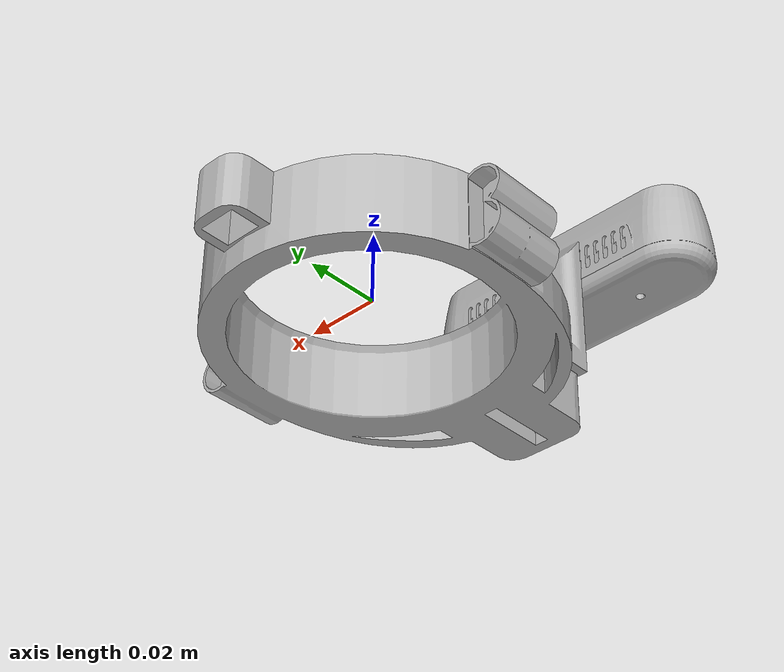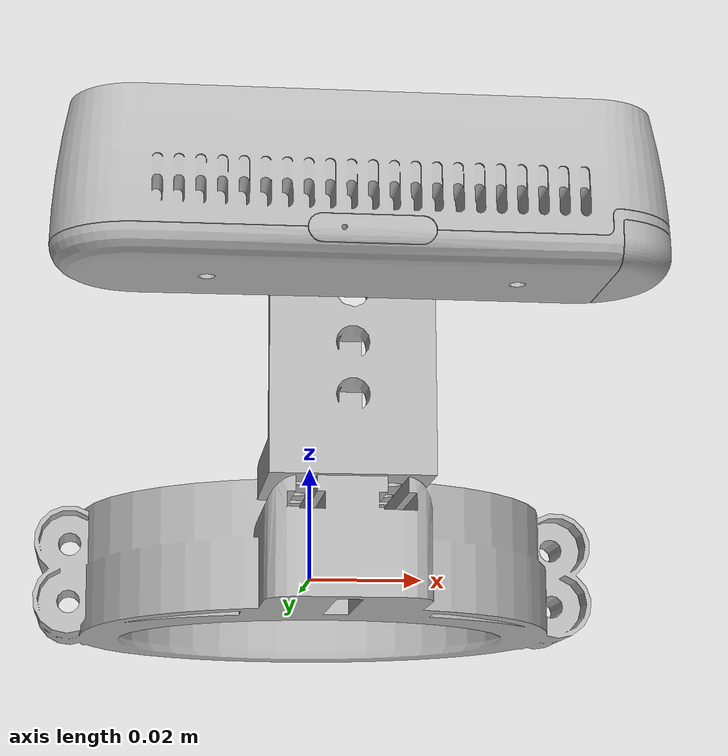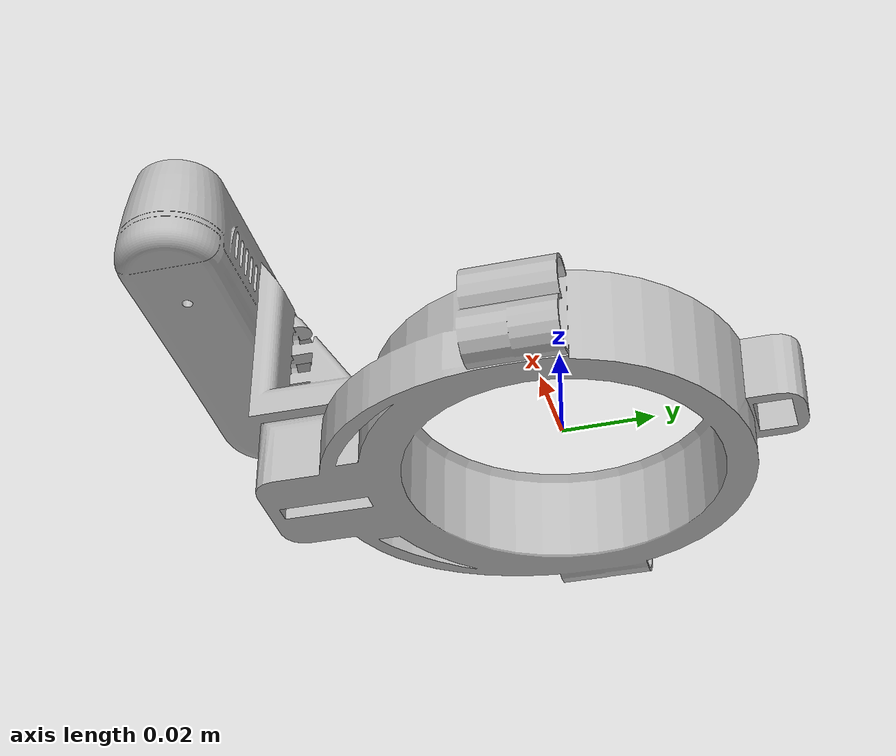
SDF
<sdf version='1.6'>
  <model name='IRS'>
    <link name='base_link'>
      <pose frame=''>0 0 0 0 -0 0</pose>
      <inertial>
        <pose frame=''>-1e-06 -0.001089 0.012341 0 -0 0</pose>
        <mass>0.000470667</mass>
        <inertia>
          <ixx>1.38798e-05</ixx>
          <ixy>-1.47891e-11</ixy>
          <ixz>-5.39694e-11</ixz>
          <iyy>4.36045e-05</iyy>
          <iyz>6.54134e-07</iyz>
          <izz>3.32416e-05</izz>
        </inertia>
      </inertial>
      <collision name='base_link_collision'>
        <pose frame=''>0 0 0 0 -0 0</pose>
        <geometry>
          <mesh>
            <scale>1 1 1</scale>
            <uri>model://IRS/meshes/base_link.STL</uri>
          </mesh>
        </geometry>
      </collision>
      <visual name='base_link_visual'>
        <pose frame=''>0 0 0 0 -0 0</pose>
        <geometry>
          <mesh>
            <scale>1 1 1</scale>
            <uri>model://IRS/meshes/base_link.STL</uri>
          </mesh>
        </geometry>
      </visual>
    </link>
    <link name='Link_1'>
      <pose frame=''>0 -0.054291 0 1.5708 -0 0</pose>
      <inertial>
        <pose frame=''>-0.000196 0.040659 0.032962 0 -0 0</pose>
        <mass>0.0000538583</mass>
        <inertia>
          <ixx>5.58983e-06</ixx>
          <ixy>-2.4541e-07</ixy>
          <ixz>4.96925e-09</ixz>
          <iyy>2.81823e-05</iyy>
          <iyz>-3.97957e-07</iyz>
          <izz>2.89917e-05</izz>
        </inertia>
      </inertial>
      <collision name='Link_1_collision'>
        <pose frame=''>0 0 0 0 -0 0</pose>
        <geometry>
          <mesh>
            <scale>1 1 1</scale>
            <uri>model://IRS/meshes/Link_1.STL</uri>
          </mesh>
        </geometry>
      </collision>
      <visual name='Link_1_visual'>
        <pose frame=''>0 0 0 0 -0 0</pose>
        <geometry>
          <mesh>
            <scale>1 1 1</scale>
            <uri>model://IRS/meshes/Link_1.STL</uri>
          </mesh>
        </geometry>
      </visual>
    </link>
    <joint name='guia' type='prismatic'>
      <child>Link_1</child>
      <parent>base_link</parent>
      <axis>
        <xyz>0 -1 -4e-06</xyz>
        <limit>
          <lower>0</lower>
          <upper>0.015</upper>
          <effort>0.1</effort>
          <velocity>0.005</velocity>
        </limit>
        <dynamics>
          <spring_reference>0</spring_reference>
          <spring_stiffness>0</spring_stiffness>
        </dynamics>
        <use_parent_model_frame>1</use_parent_model_frame>
      </axis>
    </joint>
  </model>
</sdf>
